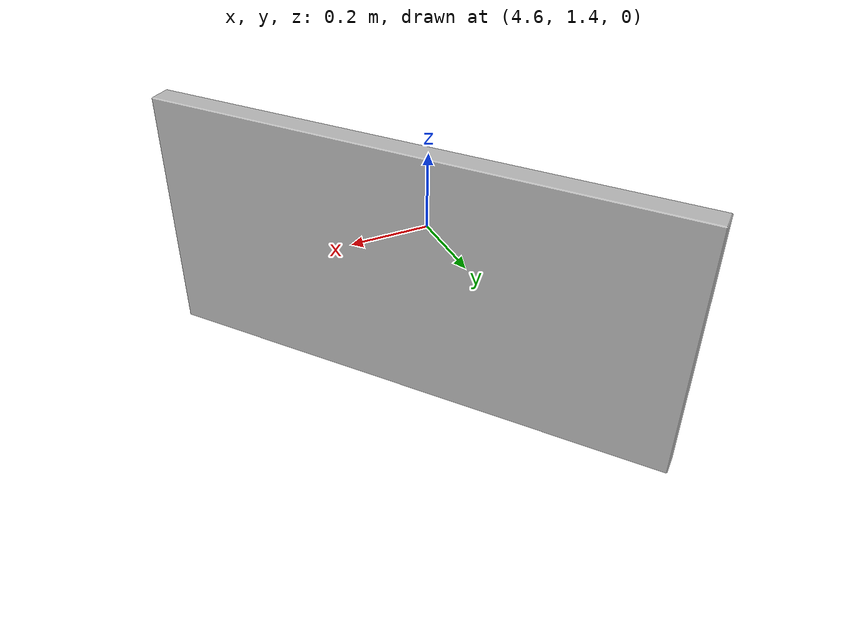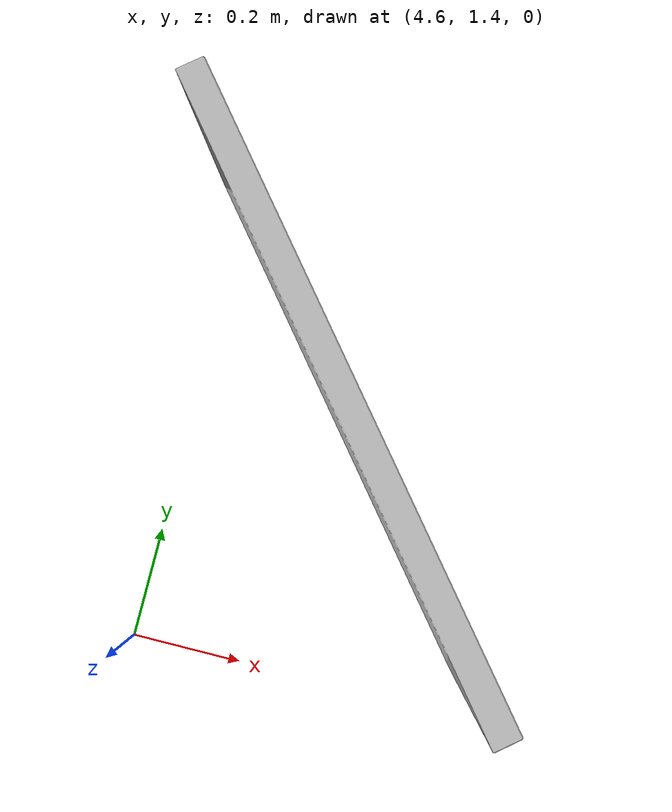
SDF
<sdf version="1.6">
 <world name="default">
  <model name="aws_robomaker_residential_PortraitD_01">
   <link name="link">
    <inertial><mass>1.5</mass></inertial>
    <collision name="collision">
     <geometry>
      <mesh>
       <uri>file://models/aws_robomaker_residential_PortraitD_01/meshes/aws_PortraitD_01_collision.DAE</uri>
       <scale>1 1 1</scale>
      </mesh>
     </geometry>
    </collision>
    <visual name="visual">
     <geometry>
      <mesh>
       <uri>file://models/aws_robomaker_residential_PortraitD_01/meshes/aws_PortraitD_01_visual.DAE</uri>
       <scale>1 1 1</scale>
      </mesh>
     </geometry>
     <meta><layer>2</layer></meta>
    </visual>
   </link>
   <static>1</static>
   <pose>4.8784 1.88691 0 0 0 -0.889202</pose>
  </model>
 </world>
</sdf>
